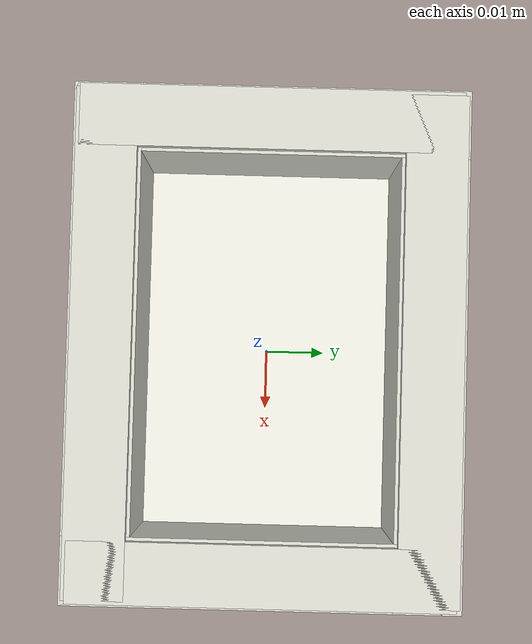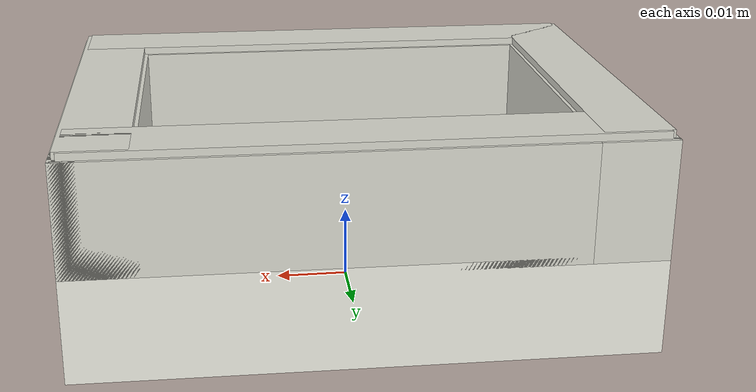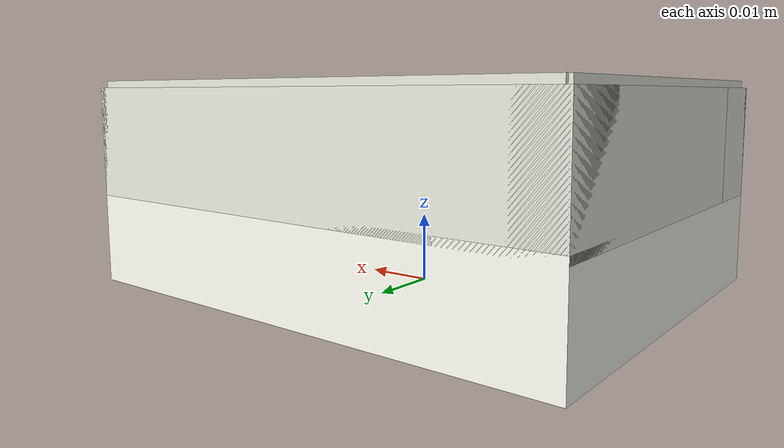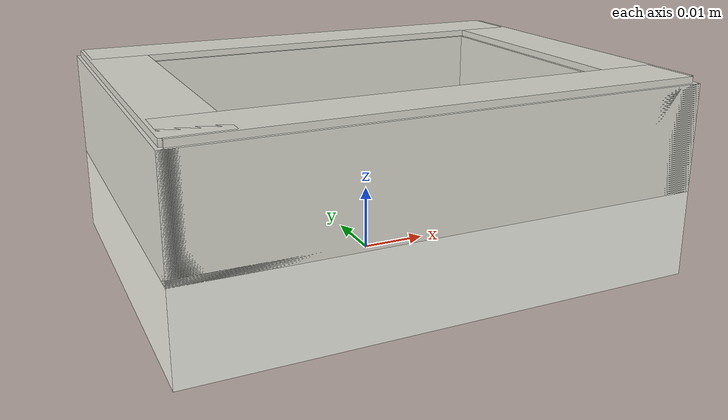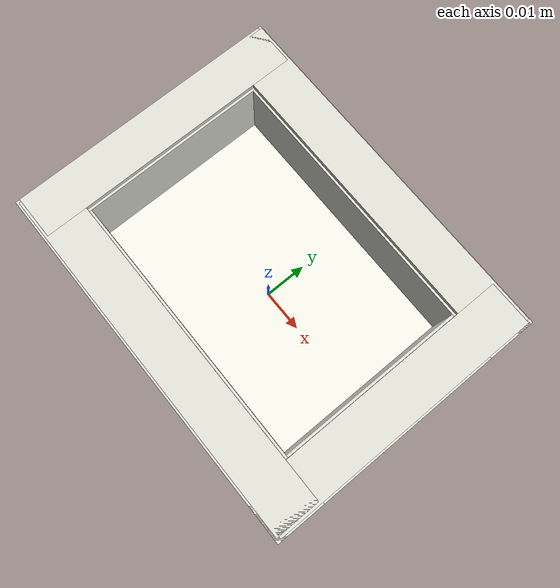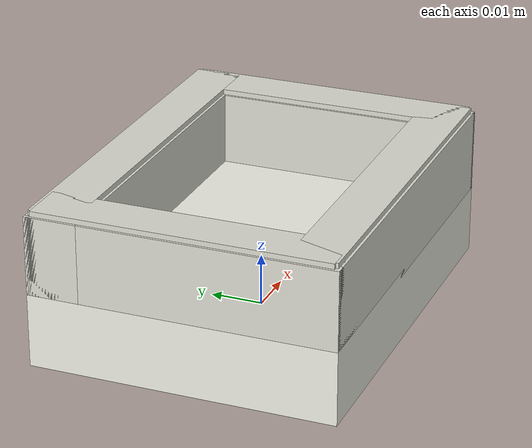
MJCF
<mujoco model="foam_board_fit">
  <asset>
    <material name="foam_white" rgba="0.94 0.94 0.90 1" specular="0.05" shininess="0.04" />
    <material name="foam_edge" rgba="0.86 0.86 0.82 1" specular="0.04" shininess="0.03" />
  </asset>
  <worldbody>
    <body>
      <body name="object">
        <geom name="foam_fit_collision" type="box" pos="0 0 0.007" size="0.038 0.029 0.007" material="foam_white" group="0" friction="1.0 0.3 0.1" />
        <geom name="foam_fit_edge_right_collision" type="box" pos="0.033 0 0.021" size="0.005 0.029 0.008" material="foam_edge" group="0" friction="1.0 0.3 0.1" />
        <geom name="foam_fit_edge_left_collision" type="box" pos="-0.033 0 0.021" size="0.005 0.029 0.008" material="foam_edge" group="0" friction="1.0 0.3 0.1" />
        <geom name="foam_fit_edge_front_collision" type="box" pos="0 -0.024 0.021" size="0.038 0.005 0.008" material="foam_edge" group="0" friction="1.0 0.3 0.1" />
        <geom name="foam_fit_edge_back_collision" type="box" pos="0 0.024 0.021" size="0.038 0.005 0.008" material="foam_edge" group="0" friction="1.0 0.3 0.1" />
        <geom name="foam_fit_visual" type="box" pos="0 0 0.008" size="0.037 0.028 0.007" material="foam_white" group="1" contype="0" conaffinity="0" />
        <geom name="foam_fit_edge_right_visual" type="box" pos="0.033 0 0.022" size="0.0045 0.028 0.008" material="foam_edge" group="1" contype="0" conaffinity="0" />
        <geom name="foam_fit_edge_left_visual" type="box" pos="-0.033 0 0.022" size="0.0045 0.028 0.008" material="foam_edge" group="1" contype="0" conaffinity="0" />
        <geom name="foam_fit_edge_front_visual" type="box" pos="0 -0.024 0.022" size="0.037 0.0045 0.008" material="foam_edge" group="1" contype="0" conaffinity="0" />
        <geom name="foam_fit_edge_back_visual" type="box" pos="0 0.024 0.022" size="0.037 0.0045 0.008" material="foam_edge" group="1" contype="0" conaffinity="0" />
      </body>
      <site rgba="0 0 0 0" size="0.005" pos="0 0 -0.004" name="bottom_site" />
      <site rgba="0 0 0 0" size="0.005" pos="0 0 0.032" name="top_site" />
      <site rgba="0 0 0 0" size="0.038" pos="0.038 0.038 0" name="horizontal_radius_site" />
    </body>
  </worldbody>
</mujoco>
